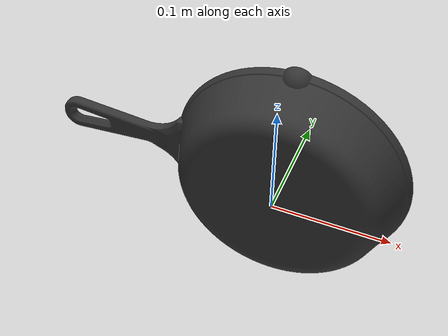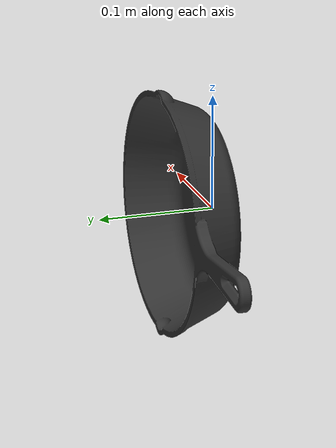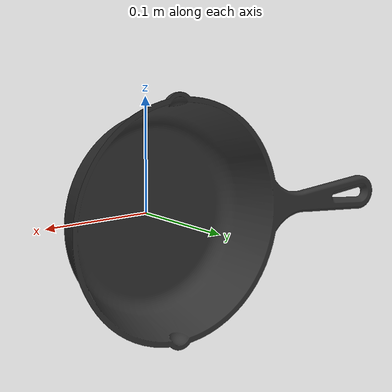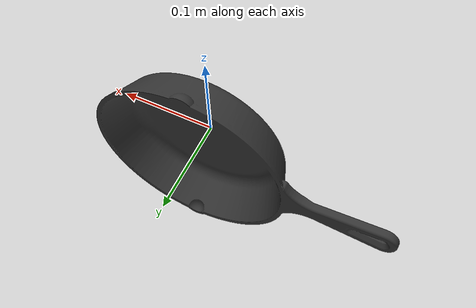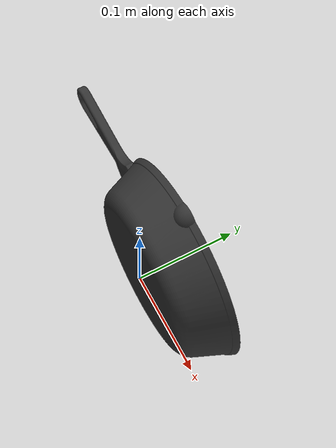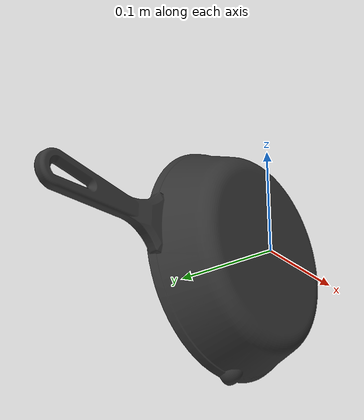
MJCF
<mujoco model="skillet">
  <default>
    <default class="visual">
      <geom group="2" type="mesh" contype="0" conaffinity="0"/>
    </default>
    <default class="collision">
      <geom group="3" type="mesh"/>
    </default>
  </default>
  <asset>
    <material name="0.200000_0.200000_0.200000_0.000000_0.000000" specular="0.0" shininess="0.0" rgba="0.2 0.2 0.2 1"/>
    <mesh file="skillet.obj"/>
    <mesh file="skillet_collision_0.obj"/>
    <mesh file="skillet_collision_1.obj"/>
    <mesh file="skillet_collision_2.obj"/>
    <mesh file="skillet_collision_3.obj"/>
    <mesh file="skillet_collision_4.obj"/>
    <mesh file="skillet_collision_5.obj"/>
    <mesh file="skillet_collision_6.obj"/>
    <mesh file="skillet_collision_7.obj"/>
    <mesh file="skillet_collision_8.obj"/>
    <mesh file="skillet_collision_9.obj"/>
    <mesh file="skillet_collision_10.obj"/>
    <mesh file="skillet_collision_11.obj"/>
    <mesh file="skillet_collision_12.obj"/>
    <mesh file="skillet_collision_13.obj"/>
    <mesh file="skillet_collision_14.obj"/>
    <mesh file="skillet_collision_15.obj"/>
    <mesh file="skillet_collision_16.obj"/>
    <mesh file="skillet_collision_17.obj"/>
    <mesh file="skillet_collision_18.obj"/>
    <mesh file="skillet_collision_19.obj"/>
    <mesh file="skillet_collision_20.obj"/>
    <mesh file="skillet_collision_21.obj"/>
    <mesh file="skillet_collision_22.obj"/>
    <mesh file="skillet_collision_23.obj"/>
    <mesh file="skillet_collision_24.obj"/>
    <mesh file="skillet_collision_25.obj"/>
    <mesh file="skillet_collision_26.obj"/>
    <mesh file="skillet_collision_27.obj"/>
    <mesh file="skillet_collision_28.obj"/>
    <mesh file="skillet_collision_29.obj"/>
    <mesh file="skillet_collision_30.obj"/>
    <mesh file="skillet_collision_31.obj"/>
    <mesh file="skillet_collision_32.obj"/>
  </asset>
  <worldbody>
    <body name="skillet">
      <geom material="0.200000_0.200000_0.200000_0.000000_0.000000" mesh="skillet" class="visual"/>
      <geom mesh="skillet_collision_0" rgba="0.3760312532431924 0.846054491127809 0.4803776295293567 1" class="collision"/>
      <geom mesh="skillet_collision_1" rgba="0.23371934434555863 0.2677687215997093 0.7304944770959647 1" class="collision"/>
      <geom mesh="skillet_collision_2" rgba="0.7112361814938187 0.9629809246882299 0.4558590542817742 1" class="collision"/>
      <geom mesh="skillet_collision_3" rgba="0.18993008378978438 0.8472676861752356 0.4495820271939013 1" class="collision"/>
      <geom mesh="skillet_collision_4" rgba="0.42174508868630234 0.6937044249278795 0.36883281797202994 1" class="collision"/>
      <geom mesh="skillet_collision_5" rgba="0.5993315573070981 0.32303141402016666 0.3273599475376493 1" class="collision"/>
      <geom mesh="skillet_collision_6" rgba="0.8676316807374743 0.49810001842973195 0.36358771710353044 1" class="collision"/>
      <geom mesh="skillet_collision_7" rgba="0.37273502413305637 0.9211146660490624 0.4724126616693791 1" class="collision"/>
      <geom mesh="skillet_collision_8" rgba="0.4077215477819831 0.4309159000147321 0.39219751860876917 1" class="collision"/>
      <geom mesh="skillet_collision_9" rgba="0.24634361845667685 0.7868669706035015 0.6684322137418371 1" class="collision"/>
      <geom mesh="skillet_collision_10" rgba="0.4362420933531024 0.7346542776544973 0.7083072217287749 1" class="collision"/>
      <geom mesh="skillet_collision_11" rgba="0.17763028751310783 0.2396826032551419 0.08252193847140543 1" class="collision"/>
      <geom mesh="skillet_collision_12" rgba="0.7416360626865958 0.157133223362941 0.4074064877134358 1" class="collision"/>
      <geom mesh="skillet_collision_13" rgba="0.8150887655515376 0.2211751661962872 0.3123035768384399 1" class="collision"/>
      <geom mesh="skillet_collision_14" rgba="0.9127133735922028 0.35172302756940443 0.6373245671928064 1" class="collision"/>
      <geom mesh="skillet_collision_15" rgba="0.17688052651121644 0.7218196590622895 0.7661538991439144 1" class="collision"/>
      <geom mesh="skillet_collision_16" rgba="0.9019714571695289 0.29547545860449087 0.5896582788135343 1" class="collision"/>
      <geom mesh="skillet_collision_17" rgba="0.8825327317657721 0.39290090351998963 0.08732729494130342 1" class="collision"/>
      <geom mesh="skillet_collision_18" rgba="0.5471540273610306 0.6823882241730618 0.48381958409411063 1" class="collision"/>
      <geom mesh="skillet_collision_19" rgba="0.4555598487595691 0.11461487015929761 0.7443463554317106 1" class="collision"/>
      <geom mesh="skillet_collision_20" rgba="0.7876328871280509 0.5803020366177282 0.7908368805779559 1" class="collision"/>
      <geom mesh="skillet_collision_21" rgba="0.9203968396506341 0.04268911981185519 0.055232917018620875 1" class="collision"/>
      <geom mesh="skillet_collision_22" rgba="0.6027579040164298 0.44148996923950345 0.8536143246152909 1" class="collision"/>
      <geom mesh="skillet_collision_23" rgba="0.213585761426908 0.27808184334300934 0.1384515997057384 1" class="collision"/>
      <geom mesh="skillet_collision_24" rgba="0.02372274408043551 0.35434026661771767 0.40303723804282754 1" class="collision"/>
      <geom mesh="skillet_collision_25" rgba="0.2764544531091536 0.36183005037486404 0.4785008810707415 1" class="collision"/>
      <geom mesh="skillet_collision_26" rgba="0.9113927340261416 0.010966794734109109 0.9257533289745785 1" class="collision"/>
      <geom mesh="skillet_collision_27" rgba="0.7898630279035311 0.3592429857407897 0.506423476211068 1" class="collision"/>
      <geom mesh="skillet_collision_28" rgba="0.9713751175285247 0.9612352334664256 0.4578989772870058 1" class="collision"/>
      <geom mesh="skillet_collision_29" rgba="0.9755890909191365 0.0936814059319121 0.06883231013290025 1" class="collision"/>
      <geom mesh="skillet_collision_30" rgba="0.1459651039318165 0.48869263324021406 0.39045322768931423 1" class="collision"/>
      <geom mesh="skillet_collision_31" rgba="0.06562636628840113 0.653281644159694 0.6594717738692034 1" class="collision"/>
      <geom mesh="skillet_collision_32" rgba="0.6629241794384505 0.725887666090751 0.7556140194041987 1" class="collision"/>
    </body>
  </worldbody>
</mujoco>
